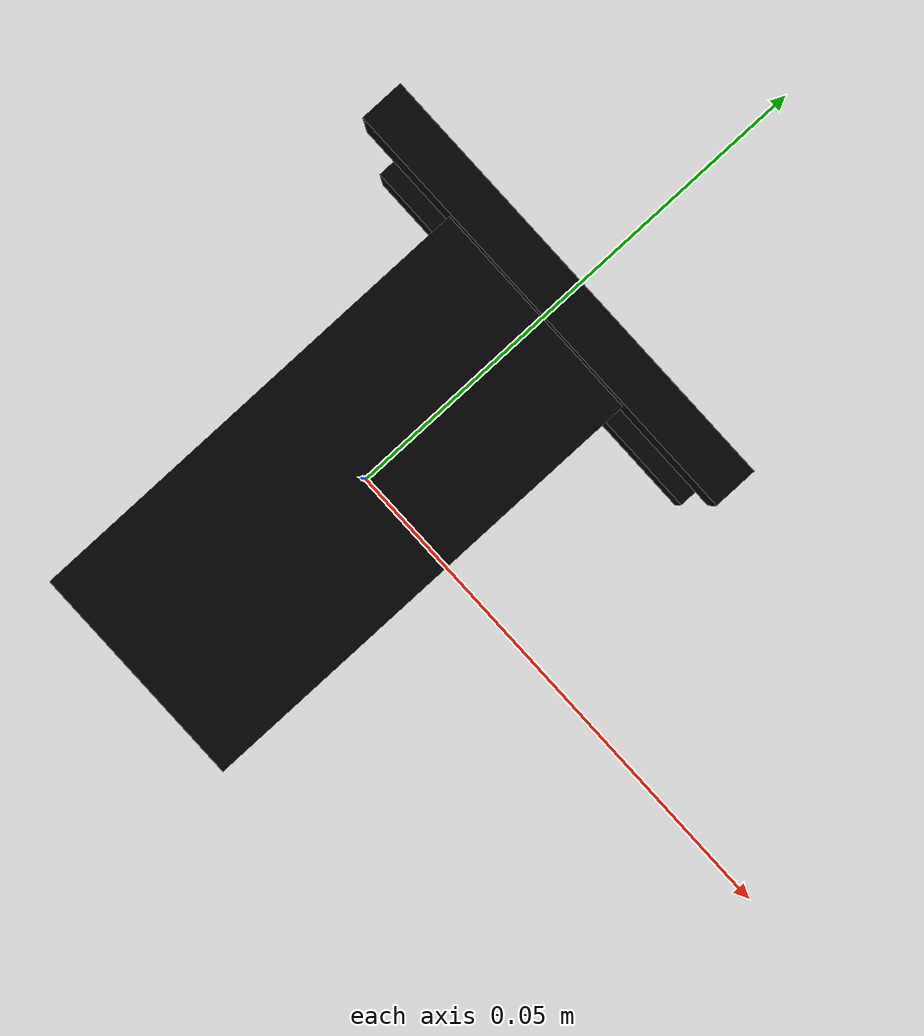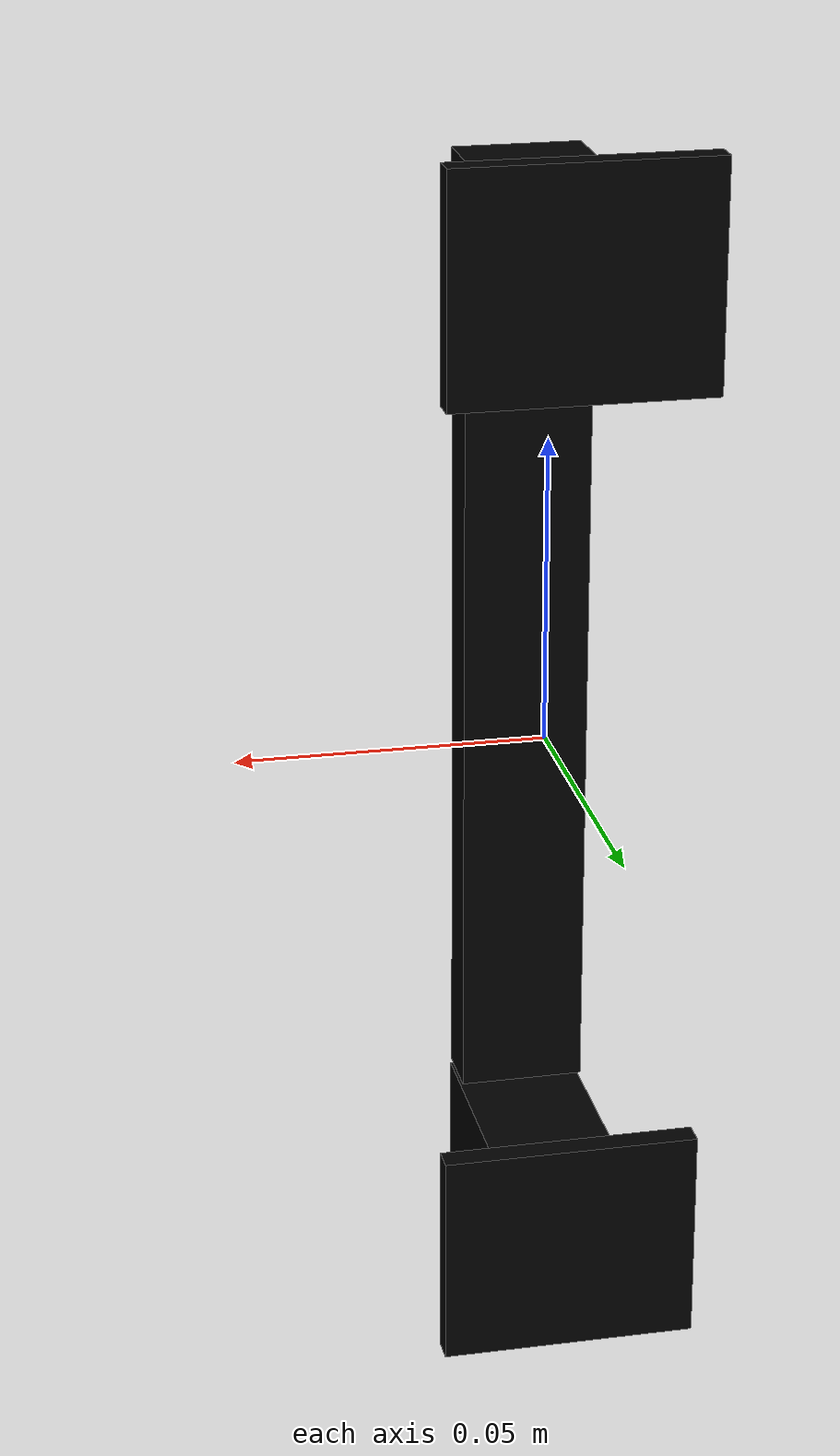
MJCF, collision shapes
<?xml version="1.0" ?>
<mujoco model="model">
    <compiler angle="radian"/>
    <asset>
        <mesh file="visuals/CabinetHandle018.obj" name="mesh"/>
        <texture file="visuals/T_BC001.png" name="tex" type="2d"/>
        <material name="mat" rgba="1 1 1 1.0" texture="tex" shininess="3" specular="2"/>
    </asset>
    <default>
        <default class="visual">
            <geom conaffinity="0" contype="0" group="1" type="mesh"/>
        </default>
        <default class="collision">
            <geom group="0" rgba="0 0 0 0"/>
        </default>
        <default class="spawn">
            <geom group="0" rgba="0 0 0 0" contype="0" conaffinity="0"/>
            <site group="0" rgba="0 0 0 0"/>
        </default>
    </default>
    <worldbody>
        <body>
            <body name="object">
                <geom mesh="mesh" type="mesh" solimp="0.998 0.998 0.001" solref="0.001 1" density="100" friction="0.95 0.3 0.1" class="visual" material="mat"/>
                <geom class="collision" type="box" pos="0.0002719331532716751 0.02178981900215149 0.08058779686689377" size="0.020876025781035423 0.0020276359282433987 0.018018359318375587" quat="1.0 0.0 0.0 0.0" name="handle_connector"/>
                <geom class="collision" type="box" pos="0.0002719331532716751 0.02178981900215149 -0.08054544776678085" size="0.020876025781035423 0.0020276359282433987 0.018018359318375587" quat="1.0 0.0 0.0 0.0"/>
                <geom class="collision" type="box" pos="9.384006261825562e-06 -0.002031311159953475 0.0805707648396492" size="0.010320320725440979 0.021707996726036072 0.010098435916006565" quat="1.0 0.0 0.0 0.0"/>
                <geom class="collision" type="box" pos="-9.781436529010534e-05 -0.0020317710004746914 -0.08004496246576309" size="0.010339549742639065 0.021708456799387932 0.009831873700022697" quat="1.0 0.0 0.0 0.0"/>
                <geom class="collision" type="box" pos="-0.00021015317179262638 -0.018778996542096138 0.0008166320039890707" size="0.010338816791772842 0.004644464235752821 0.07013573497533798" quat="1.0 0.0 0.0 0.0"/>
            </body>
        </body>
    </worldbody>
    <actuator/>
</mujoco>
